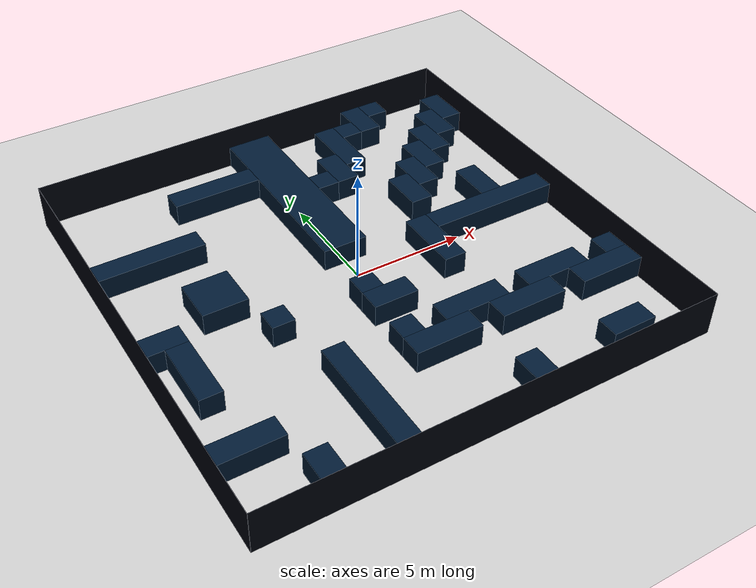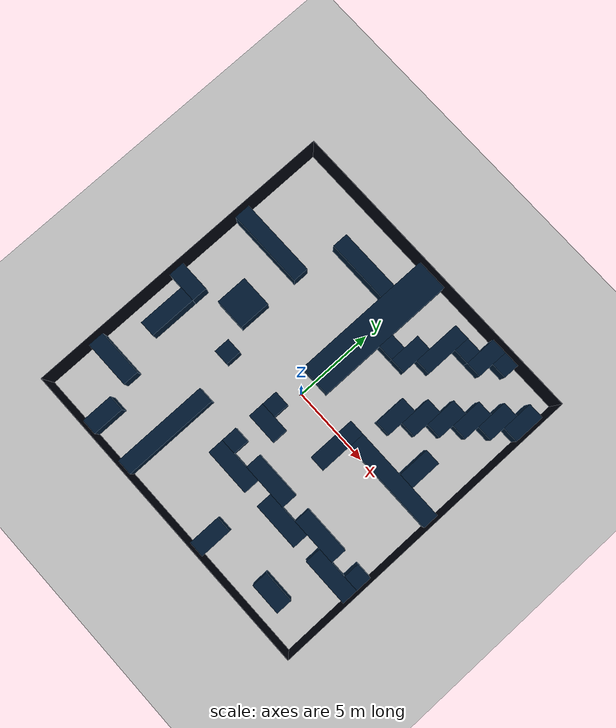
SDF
<?xml version="1.0"?>
<sdf version='1.8'>
    <world name='maze'>
        <physics name='1ms' type='ignored'>
            <max_step_size>0.003</max_step_size>
            <real_time_factor>1</real_time_factor>
            <real_time_update_rate>1000</real_time_update_rate>
        </physics>
        <plugin filename="gz-sim-physics-system" name="gz::sim::systems::Physics" />
        <plugin filename="gz-sim-user-commands-system" name="gz::sim::systems::UserCommands" />
        <plugin filename="gz-sim-scene-broadcaster-system" name="gz::sim::systems::SceneBroadcaster" />
        <plugin filename="gz-sim-sensors-system" name="gz::sim::systems::Sensors">
            <render_engine>ogre2</render_engine>
        </plugin>
        <plugin filename="gz-sim-imu-system" name="gz::sim::systems::Imu" />

        <include>
            <uri>https://fuel.gazebosim.org/1.0/OpenRobotics/models/Ground Plane</uri>
        </include>

        <light type="directional" name="sun">
            <cast_shadows>false</cast_shadows>
            <pose>0 0 10 0 0 0</pose>
            <diffuse>0.8 0.8 0.8 1</diffuse>
            <specular>0.2 0.2 0.2 1</specular>
            <attenuation>
                <range>1000</range>
                <constant>0.9</constant>
                <linear>0.01</linear>
                <quadratic>0.001</quadratic>
            </attenuation>
            <direction>-0.5 0.1 -0.9</direction>
        </light>

        <model name="goal_box">
            <pose>0 0 0 0 0 0</pose>
            <static>true</static>

            <link name="link">
                <inertial>
                    <mass>1</mass>
                </inertial>
                <visual name="visual">
                    <geometry>
                        <box>
                            <size>0.2 0.2 0.2</size>
                        </box>
                    </geometry>
                    <material>
                        <ambient>0.1 0.1 0.1 1</ambient>
                        <diffuse>0.87 0.11 0.11 1</diffuse>
                        <specular>0 0.01 0.05 1</specular>
                    </material>
                </visual>
            </link>

            <plugin name="trajectory_plugin" filename="libtrajectory_plugin.so">
                <script>
                    <loop>true</loop>
                    <auto_start>true</auto_start>

                    <trajectory id="0" type="square">

                        <waypoint>
                            <time>0.0</time>
                            <pose>1.5 -0.5 0.5 0 0 0</pose>
                        </waypoint>

                        <waypoint>
                            <time>10.0</time>
                            <pose>1.5 -0.5 0.5 0 0 0</pose>
                        </waypoint>

                        <waypoint>
                            <time>27.0</time>
                            <pose>2.2 -3.4 0.5 0 0 0</pose>
                        </waypoint>

                        <waypoint>
                            <time>41.0</time>
                            <pose>-0.5 -3.4 0.5 0 0 0</pose>
                        </waypoint>

                        <waypoint>
                            <time>55.0</time>
                            <pose>-2.45 -2.0 0.5 0 0 0</pose>
                        </waypoint>

                        <waypoint>
                            <time>69.0</time>
                            <pose>-3.45 0.8 0.5 0 0 0</pose>
                        </waypoint>

                        <waypoint>
                            <time>89.0</time>
                            <pose>-3.1 4.5 0.5 0 0 0</pose>
                        </waypoint>

                        <waypoint>
                            <time>120.0</time>
                            <pose>-7.0 7.5 0.5 0 0 0</pose>
                        </waypoint>

                    </trajectory>
                </script>
            </plugin>
        </model>

        <model name='border'>
            <pose>0 0 1 0 0 0</pose>
            <static>true</static>
            <link name='wall1'>
                <pose>-10.005 0 0 0 0 0</pose>
                <static>true</static>
                <collision name='wall1_collision'>
                    <geometry>
                        <box>
                            <size>0.01 20 2</size>
                        </box>
                    </geometry>
                </collision>
                <visual name='wall1_visual'>
                    <geometry>
                        <box>
                            <size>0.01 20 2</size>
                        </box>
                    </geometry>
                    <material>
                        <ambient>0.1 0.1 0.1 1</ambient>
                        <diffuse>0 0.01 0.05 1</diffuse>
                        <specular>0 0.01 0.05 1</specular>
                    </material>
                </visual>
            </link>
            <link name='wall2'>
                <pose>10.005 0 0 0 0 0</pose>
                <static>true</static>
                <collision name='wall2_collision'>
                    <geometry>
                        <box>
                            <size>0.01 20 2</size>
                        </box>
                    </geometry>
                </collision>
                <visual name='wall2_visual'>
                    <geometry>
                        <box>
                            <size>0.01 20 2</size>
                        </box>
                    </geometry>
                    <material>
                        <ambient>0.1 0.1 0.1 1</ambient>
                        <diffuse>0 0.01 0.05 1</diffuse>
                        <specular>0 0.01 0.05 1</specular>
                    </material>
                </visual>
            </link>
            <link name='wall3'>
                <pose>0 10.005 0 0 0 0</pose>
                <static>true</static>
                <collision name='wall3_collision'>
                    <geometry>
                        <box>
                            <size>20 0.01 2</size>
                        </box>
                    </geometry>
                </collision>
                <visual name='wall3_visual'>
                    <geometry>
                        <box>
                            <size>20 0.01 2</size>
                        </box>
                    </geometry>
                    <material>
                        <ambient>0.1 0.1 0.1 1</ambient>
                        <diffuse>0 0.01 0.05 1</diffuse>
                        <specular>0 0.01 0.05 1</specular>
                    </material>
                </visual>
            </link>
            <link name='wall4'>
                <pose>0 -10.005 0 0 0 0</pose>
                <static>true</static>
                <collision name='wall4_collision'>
                    <geometry>
                        <box>
                            <size>20 0.01 2</size>
                        </box>
                    </geometry>
                    <material>
                        <ambient>0.1 0.1 0.1 1</ambient>
                        <diffuse>0 0.01 0.05 1</diffuse>
                        <specular>0 0.01 0.05 1</specular>
                    </material>
                </collision>
                <visual name='wall4_visual'>
                    <geometry>
                        <box>
                            <size>20 0.01 2</size>
                        </box>
                    </geometry>
                    <material>
                        <ambient>0.1 0.1 0.1 1</ambient>
                        <diffuse>0 0.01 0.05 1</diffuse>
                        <specular>0 0.01 0.05 1</specular>
                    </material>
                </visual>
            </link>
        </model>

        <model name='obstacles'>
            <pose>0 0 0.5 0 0 0</pose>
            <static>true</static>
            <link name='wall1'>
                <pose>-6.5 -9 0 0 0 0</pose>
                <static>true</static>
                <collision name='wall1_collision'>
                    <geometry>
                        <box>
                            <size>1 2 1</size>
                        </box>
                    </geometry>
                </collision>
                <visual name='wall1_visual'>
                    <geometry>
                        <box>
                            <size>1 2 1</size>
                        </box>
                    </geometry>
                    <material>
                        <ambient>0.1 0.1 0.1 1</ambient>
                        <diffuse>0 0.1 0.2 1</diffuse>
                        <specular>0 0.01 0.05 1</specular>
                    </material>
                </visual>
            </link>

            <link name='wall2'>
                <pose>-8.5 -6.5 0 0 0 0</pose>
                <static>true</static>
                <collision name='wall2_collision'>
                    <geometry>
                        <box>
                            <size>3 1 1</size>
                        </box>
                    </geometry>
                </collision>
                <visual name='wall2_visual'>
                    <geometry>
                        <box>
                            <size>3 1 1</size>
                        </box>
                    </geometry>
                    <material>
                        <ambient>0.1 0.1 0.1 1</ambient>
                        <diffuse>0 0.1 0.2 1</diffuse>
                        <specular>0 0.01 0.05 1</specular>
                    </material>
                </visual>
            </link>

            <link name='wall3'>
                <pose>-3.5 -7 0 0 0 0</pose>
                <static>true</static>
                <collision name='wall3_collision'>
                    <geometry>
                        <box>
                            <size>1 6 1</size>
                        </box>
                    </geometry>
                </collision>
                <visual name='wall3_visual'>
                    <geometry>
                        <box>
                            <size>1 6 1</size>
                        </box>
                    </geometry>
                    <material>
                        <ambient>0.1 0.1 0.1 1</ambient>
                        <diffuse>0 0.1 0.2 1</diffuse>
                        <specular>0 0.01 0.05 1</specular>
                    </material>
                </visual>
            </link>

            <link name='wall4'>
                <pose>2.5 -9 0 0 0 0</pose>
                <static>true</static>
                <collision name='wall4_collision'>
                    <geometry>
                        <box>
                            <size>1 2 1</size>
                        </box>
                    </geometry>
                </collision>
                <visual name='wall4_visual'>
                    <geometry>
                        <box>
                            <size>1 2 1</size>
                        </box>
                    </geometry>
                    <material>
                        <ambient>0.1 0.1 0.1 1</ambient>
                        <diffuse>0 0.1 0.2 1</diffuse>
                        <specular>0 0.01 0.05 1</specular>
                    </material>
                </visual>
            </link>

            <link name='wall5'>
                <pose>7 -8.5 0 0 0 0</pose>
                <static>true</static>
                <collision name='wall5_collision'>
                    <geometry>
                        <box>
                            <size>2 1 1</size>
                        </box>
                    </geometry>
                </collision>
                <visual name='wall5_visual'>
                    <geometry>
                        <box>
                            <size>2 1 1</size>
                        </box>
                    </geometry>
                    <material>
                        <ambient>0.1 0.1 0.1 1</ambient>
                        <diffuse>0 0.1 0.2 1</diffuse>
                        <specular>0 0.01 0.05 1</specular>
                    </material>
                </visual>
            </link>

            <link name='wall6'>
                <pose>-9 -0.5 0 0 0 0</pose>
                <static>true</static>
                <collision name='wall6_collision'>
                    <geometry>
                        <box>
                            <size>2 1 1</size>
                        </box>
                    </geometry>
                </collision>
                <visual name='wall6_visual'>
                    <geometry>
                        <box>
                            <size>2 1 1</size>
                        </box>
                    </geometry>
                    <material>
                        <ambient>0.1 0.1 0.1 1</ambient>
                        <diffuse>0 0.1 0.2 1</diffuse>
                        <specular>0 0.01 0.05 1</specular>
                    </material>
                </visual>
            </link>

            <link name='wall7'>
                <pose>-8.5 -2.5 0 0 0 0</pose>
                <static>true</static>
                <collision name='wall7_collision'>
                    <geometry>
                        <box>
                            <size>1 3 1</size>
                        </box>
                    </geometry>
                </collision>
                <visual name='wall7_visual'>
                    <geometry>
                        <box>
                            <size>1 3 1</size>
                        </box>
                    </geometry>
                    <material>
                        <ambient>0.1 0.1 0.1 1</ambient>
                        <diffuse>0 0.1 0.2 1</diffuse>
                        <specular>0 0.01 0.05 1</specular>
                    </material>
                </visual>
            </link>

            <link name='wall8'>
                <pose>-4.5 -1.5 0 0 0 0</pose>
                <static>true</static>
                <collision name='wall8_collision'>
                    <geometry>
                        <box>
                            <size>1 1 1</size>
                        </box>
                    </geometry>
                </collision>
                <visual name='wall8_visual'>
                    <geometry>
                        <box>
                            <size>1 1 1</size>
                        </box>
                    </geometry>
                    <material>
                        <ambient>0.1 0.1 0.1 1</ambient>
                        <diffuse>0 0.1 0.2 1</diffuse>
                        <specular>0 0.01 0.05 1</specular>
                    </material>
                </visual>
            </link>

            <link name='wall9'>
                <pose>-6 1 0 0 0 0</pose>
                <static>true</static>
                <collision name='wall9_collision'>
                    <geometry>
                        <box>
                            <size>2 2 1</size>
                        </box>
                    </geometry>
                </collision>
                <visual name='wall9_visual'>
                    <geometry>
                        <box>
                            <size>2 2 1</size>
                        </box>
                    </geometry>
                    <material>
                        <ambient>0.1 0.1 0.1 1</ambient>
                        <diffuse>0 0.1 0.2 1</diffuse>
                        <specular>0 0.01 0.05 1</specular>
                    </material>
                </visual>
            </link>

            <link name='wall10'>
                <pose>-7.5 4.5 0 0 0 0</pose>
                <static>true</static>
                <collision name='wall10_collision'>
                    <geometry>
                        <box>
                            <size>5 1 1</size>
                        </box>
                    </geometry>
                </collision>
                <visual name='wall10_visual'>
                    <geometry>
                        <box>
                            <size>5 1 1</size>
                        </box>
                    </geometry>
                    <material>
                        <ambient>0.1 0.1 0.1 1</ambient>
                        <diffuse>0 0.1 0.2 1</diffuse>
                        <specular>0 0.01 0.05 1</specular>
                    </material>
                </visual>
            </link>

            <link name='wall11'>
                <pose>-3 7.5 0 0 0 0</pose>
                <static>true</static>
                <collision name='wall11_collision'>
                    <geometry>
                        <box>
                            <size>4 1 1</size>
                        </box>
                    </geometry>
                </collision>
                <visual name='wall11_visual'>
                    <geometry>
                        <box>
                            <size>4 1 1</size>
                        </box>
                    </geometry>
                    <material>
                        <ambient>0.1 0.1 0.1 1</ambient>
                        <diffuse>0 0.1 0.2 1</diffuse>
                        <specular>0 0.01 0.05 1</specular>
                    </material>
                </visual>
            </link>
            <link name='wall12'>
                <pose>0 5.5 0 0 0 0</pose>
                <static>true</static>
                <collision name='wall12_collision'>
                    <geometry>
                        <box>
                            <size>2 9 1</size>
                        </box>
                    </geometry>
                </collision>
                <visual name='wall12_visual'>
                    <geometry>
                        <box>
                            <size>2 9 1</size>
                        </box>
                    </geometry>
                    <material>
                        <ambient>0.1 0.1 0.1 1</ambient>
                        <diffuse>0 0.1 0.2 1</diffuse>
                        <specular>0 0.01 0.05 1</specular>
                    </material>
                </visual>
            </link>

            <link name='wall13'>
                <pose>0 -2.5 0 0 0 0</pose>
                <static>true</static>
                <collision name='wall13_collision'>
                    <geometry>
                        <box>
                            <size>2 1 1</size>
                        </box>
                    </geometry>
                </collision>
                <visual name='wall13_visual'>
                    <geometry>
                        <box>
                            <size>2 1 1</size>
                        </box>
                    </geometry>
                    <material>
                        <ambient>0.1 0.1 0.1 1</ambient>
                        <diffuse>0 0.1 0.2 1</diffuse>
                        <specular>0 0.01 0.05 1</specular>
                    </material>
                </visual>
            </link>

            <link name='wall14'>
                <pose>-0.5 -1.5 0 0 0 0</pose>
                <static>true</static>
                <collision name='wall14_collision'>
                    <geometry>
                        <box>
                            <size>1 1 1</size>
                        </box>
                    </geometry>
                </collision>
                <visual name='wall14_visual'>
                    <geometry>
                        <box>
                            <size>1 1 1</size>
                        </box>
                    </geometry>
                    <material>
                        <ambient>0.1 0.1 0.1 1</ambient>
                        <diffuse>0 0.1 0.2 1</diffuse>
                        <specular>0 0.01 0.05 1</specular>
                    </material>
                </visual>
            </link>

            <link name='wall15'>
                <pose>-0.5 -4.5 0 0 0 0</pose>
                <static>true</static>
                <collision name='wall15_collision'>
                    <geometry>
                        <box>
                            <size>1 1 1</size>
                        </box>
                    </geometry>
                </collision>
                <visual name='wall15_visual'>
                    <geometry>
                        <box>
                            <size>1 1 1</size>
                        </box>
                    </geometry>
                    <material>
                        <ambient>0.1 0.1 0.1 1</ambient>
                        <diffuse>0 0.1 0.2 1</diffuse>
                        <specular>0 0.01 0.05 1</specular>
                    </material>
                </visual>
            </link>

            <link name='wall16'>
                <pose>0.5 -5.5 0 0 0 0</pose>
                <static>true</static>
                <collision name='wall16_collision'>
                    <geometry>
                        <box>
                            <size>3 1 1</size>
                        </box>
                    </geometry>
                </collision>
                <visual name='wall16_visual'>
                    <geometry>
                        <box>
                            <size>3 1 1</size>
                        </box>
                    </geometry>
                    <material>
                        <ambient>0.1 0.1 0.1 1</ambient>
                        <diffuse>0 0.1 0.2 1</diffuse>
                        <specular>0 0.01 0.05 1</specular>
                    </material>
                </visual>
            </link>

            <link name='wall17'>
                <pose>2.5 -4.5 0 0 0 0</pose>
                <static>true</static>
                <collision name='wall17_collision'>
                    <geometry>
                        <box>
                            <size>3 1 1</size>
                        </box>
                    </geometry>
                </collision>
                <visual name='wall17_visual'>
                    <geometry>
                        <box>
                            <size>3 1 1</size>
                        </box>
                    </geometry>
                    <material>
                        <ambient>0.1 0.1 0.1 1</ambient>
                        <diffuse>0 0.1 0.2 1</diffuse>
                        <specular>0 0.01 0.05 1</specular>
                    </material>
                </visual>
            </link>

            <link name='wall18'>
                <pose>4.5 -5.5 0 0 0 0</pose>
                <static>true</static>
                <collision name='wall18_collision'>
                    <geometry>
                        <box>
                            <size>3 1 1</size>
                        </box>
                    </geometry>
                </collision>
                <visual name='wall18_visual'>
                    <geometry>
                        <box>
                            <size>3 1 1</size>
                        </box>
                    </geometry>
                    <material>
                        <ambient>0.1 0.1 0.1 1</ambient>
                        <diffuse>0 0.1 0.2 1</diffuse>
                        <specular>0 0.01 0.05 1</specular>
                    </material>
                </visual>
            </link>

            <link name='wall19'>
                <pose>6.5 -4.5 0 0 0 0</pose>
                <static>true</static>
                <collision name='wall19_collision'>
                    <geometry>
                        <box>
                            <size>3 1 1</size>
                        </box>
                    </geometry>
                </collision>
                <visual name='wall19_visual'>
                    <geometry>
                        <box>
                            <size>3 1 1</size>
                        </box>
                    </geometry>
                    <material>
                        <ambient>0.1 0.1 0.1 1</ambient>
                        <diffuse>0 0.1 0.2 1</diffuse>
                        <specular>0 0.01 0.05 1</specular>
                    </material>
                </visual>
            </link>

            <link name='wall20'>
                <pose>8.5 -5.5 0 0 0 0</pose>
                <static>true</static>
                <collision name='wall20_collision'>
                    <geometry>
                        <box>
                            <size>3 1 1</size>
                        </box>
                    </geometry>
                </collision>
                <visual name='wall20_visual'>
                    <geometry>
                        <box>
                            <size>3 1 1</size>
                        </box>
                    </geometry>
                    <material>
                        <ambient>0.1 0.1 0.1 1</ambient>
                        <diffuse>0 0.1 0.2 1</diffuse>
                        <specular>0 0.01 0.05 1</specular>
                    </material>
                </visual>
            </link>

            <link name='wall21'>
                <pose>9.5 -4.5 0 0 0 0</pose>
                <static>true</static>
                <collision name='wall21_collision'>
                    <geometry>
                        <box>
                            <size>1 1 1</size>
                        </box>
                    </geometry>
                </collision>
                <visual name='wall21_visual'>
                    <geometry>
                        <box>
                            <size>1 1 1</size>
                        </box>
                    </geometry>
                    <material>
                        <ambient>0.1 0.1 0.1 1</ambient>
                        <diffuse>0 0.1 0.2 1</diffuse>
                        <specular>0 0.01 0.05 1</specular>
                    </material>
                </visual>
            </link>

            <link name='wall22'>
                <pose>3.5 -0.5 0 0 0 0</pose>
                <static>true</static>
                <collision name='wall22_collision'>
                    <geometry>
                        <box>
                            <size>1 3 1</size>
                        </box>
                    </geometry>
                </collision>
                <visual name='wall22_visual'>
                    <geometry>
                        <box>
                            <size>1 3 1</size>
                        </box>
                    </geometry>
                    <material>
                        <ambient>0.1 0.1 0.1 1</ambient>
                        <diffuse>0 0.1 0.2 1</diffuse>
                        <specular>0 0.01 0.05 1</specular>
                    </material>
                </visual>
            </link>

            <link name='wall23'>
                <pose>7 0.5 0 0 0 0</pose>
                <static>true</static>
                <collision name='wall23_collision'>
                    <geometry>
                        <box>
                            <size>6 1 1</size>
                        </box>
                    </geometry>
                </collision>
                <visual name='wall23_visual'>
                    <geometry>
                        <box>
                            <size>6 1 1</size>
                        </box>
                    </geometry>
                    <material>
                        <ambient>0.1 0.1 0.1 1</ambient>
                        <diffuse>0 0.1 0.2 1</diffuse>
                        <specular>0 0.01 0.05 1</specular>
                    </material>
                </visual>
            </link>

            <link name='wall24'>
                <pose>7.5 2 0 0 0 0</pose>
                <static>true</static>
                <collision name='wall24_collision'>
                    <geometry>
                        <box>
                            <size>1 2 1</size>
                        </box>
                    </geometry>
                </collision>
                <visual name='wall24_visual'>
                    <geometry>
                        <box>
                            <size>1 2 1</size>
                        </box>
                    </geometry>
                    <material>
                        <ambient>0.1 0.1 0.1 1</ambient>
                        <diffuse>0 0.1 0.2 1</diffuse>
                        <specular>0 0.01 0.05 1</specular>
                    </material>
                </visual>
            </link>

            <link name='wall25'>
                <pose>1.5 5.5 0 0 0 0</pose>
                <static>true</static>
                <collision name='wall25_collision'>
                    <geometry>
                        <box>
                            <size>1 1 1</size>
                        </box>
                    </geometry>
                </collision>
                <visual name='wall25_visual'>
                    <geometry>
                        <box>
                            <size>1 1 1</size>
                        </box>
                    </geometry>
                    <material>
                        <ambient>0.1 0.1 0.1 1</ambient>
                        <diffuse>0 0.1 0.2 1</diffuse>
                        <specular>0 0.01 0.05 1</specular>
                    </material>
                </visual>
            </link>

            <link name='wall26'>
                <pose>2.5 6 0 0 0 0</pose>
                <static>true</static>
                <collision name='wall26_collision'>
                    <geometry>
                        <box>
                            <size>1 2 1</size>
                        </box>
                    </geometry>
                </collision>
                <visual name='wall26_visual'>
                    <geometry>
                        <box>
                            <size>1 2 1</size>
                        </box>
                    </geometry>
                    <material>
                        <ambient>0.1 0.1 0.1 1</ambient>
                        <diffuse>0 0.1 0.2 1</diffuse>
                        <specular>0 0.01 0.05 1</specular>
                    </material>
                </visual>
            </link>

            <link name='wall27'>
                <pose>3.5 7.5 0 0 0 0</pose>
                <static>true</static>
                <collision name='wall27_collision'>
                    <geometry>
                        <box>
                            <size>1 3 1</size>
                        </box>
                    </geometry>
                </collision>
                <visual name='wall27_visual'>
                    <geometry>
                        <box>
                            <size>1 3 1</size>
                        </box>
                    </geometry>
                    <material>
                        <ambient>0.1 0.1 0.1 1</ambient>
                        <diffuse>0 0.1 0.2 1</diffuse>
                        <specular>0 0.01 0.05 1</specular>
                    </material>
                </visual>
            </link>

            <link name='wall28'>
                <pose>4.5 8.5 0 0 0 0</pose>
                <static>true</static>
                <collision name='wall28_collision'>
                    <geometry>
                        <box>
                            <size>1 1 1</size>
                        </box>
                    </geometry>
                </collision>
                <visual name='wall28_visual'>
                    <geometry>
                        <box>
                            <size>1 1 1</size>
                        </box>
                    </geometry>
                    <material>
                        <ambient>0.1 0.1 0.1 1</ambient>
                        <diffuse>0 0.1 0.2 1</diffuse>
                        <specular>0 0.01 0.05 1</specular>
                    </material>
                </visual>
            </link>

            <link name='wall29'>
                <pose>5.5 9 0 0 0 0</pose>
                <static>true</static>
                <collision name='wall29_collision'>
                    <geometry>
                        <box>
                            <size>1 2 1</size>
                        </box>
                    </geometry>
                </collision>
                <visual name='wall29_visual'>
                    <geometry>
                        <box>
                            <size>1 2 1</size>
                        </box>
                    </geometry>
                    <material>
                        <ambient>0.1 0.1 0.1 1</ambient>
                        <diffuse>0 0.1 0.2 1</diffuse>
                        <specular>0 0.01 0.05 1</specular>
                    </material>
                </visual>
            </link>

            <link name='wall30'>
                <pose>6.5 9.5 0 0 0 0</pose>
                <static>true</static>
                <collision name='wall30_collision'>
                    <geometry>
                        <box>
                            <size>1 1 1</size>
                        </box>
                    </geometry>
                </collision>
                <visual name='wall30_visual'>
                    <geometry>
                        <box>
                            <size>1 1 1</size>
                        </box>
                    </geometry>
                    <material>
                        <ambient>0.1 0.1 0.1 1</ambient>
                        <diffuse>0 0.1 0.2 1</diffuse>
                        <specular>0 0.01 0.05 1</specular>
                    </material>
                </visual>
            </link>

            <link name='wall31'>
                <pose>4.5 3 0 0 0 0</pose>
                <static>true</static>
                <collision name='wall31_collision'>
                    <geometry>
                        <box>
                            <size>1 2 1</size>
                        </box>
                    </geometry>
                </collision>
                <visual name='wall31_visual'>
                    <geometry>
                        <box>
                            <size>1 2 1</size>
                        </box>
                    </geometry>
                    <material>
                        <ambient>0.1 0.1 0.1 1</ambient>
                        <diffuse>0 0.1 0.2 1</diffuse>
                        <specular>0 0.01 0.05 1</specular>
                    </material>
                </visual>
            </link>

            <link name='wall32'>
                <pose>5.5 4 0 0 0 0</pose>
                <static>true</static>
                <collision name='wall32_collision'>
                    <geometry>
                        <box>
                            <size>1 2 1</size>
                        </box>
                    </geometry>
                </collision>
                <visual name='wall32_visual'>
                    <geometry>
                        <box>
                            <size>1 2 1</size>
                        </box>
                    </geometry>
                    <material>
                        <ambient>0.1 0.1 0.1 1</ambient>
                        <diffuse>0 0.1 0.2 1</diffuse>
                        <specular>0 0.01 0.05 1</specular>
                    </material>
                </visual>
            </link>

            <link name='wall33'>
                <pose>6.5 5 0 0 0 0</pose>
                <static>true</static>
                <collision name='wall33_collision'>
                    <geometry>
                        <box>
                            <size>1 2 1</size>
                        </box>
                    </geometry>
                </collision>
                <visual name='wall33_visual'>
                    <geometry>
                        <box>
                            <size>1 2 1</size>
                        </box>
                    </geometry>
                    <material>
                        <ambient>0.1 0.1 0.1 1</ambient>
                        <diffuse>0 0.1 0.2 1</diffuse>
                        <specular>0 0.01 0.05 1</specular>
                    </material>
                </visual>
            </link>

            <link name='wall34'>
                <pose>7.5 6 0 0 0 0</pose>
                <static>true</static>
                <collision name='wall34_collision'>
                    <geometry>
                        <box>
                            <size>1 2 1</size>
                        </box>
                    </geometry>
                </collision>
                <visual name='wall34_visual'>
                    <geometry>
                        <box>
                            <size>1 2 1</size>
                        </box>
                    </geometry>
                    <material>
                        <ambient>0.1 0.1 0.1 1</ambient>
                        <diffuse>0 0.1 0.2 1</diffuse>
                        <specular>0 0.01 0.05 1</specular>
                    </material>
                </visual>
            </link>

            <link name='wall35'>
                <pose>8.5 7 0 0 0 0</pose>
                <static>true</static>
                <collision name='wall35_collision'>
                    <geometry>
                        <box>
                            <size>1 2 1</size>
                        </box>
                    </geometry>
                </collision>
                <visual name='wall35_visual'>
                    <geometry>
                        <box>
                            <size>1 2 1</size>
                        </box>
                    </geometry>
                    <material>
                        <ambient>0.1 0.1 0.1 1</ambient>
                        <diffuse>0 0.1 0.2 1</diffuse>
                        <specular>0 0.01 0.05 1</specular>
                    </material>
                </visual>
            </link>

            <link name='wall36'>
                <pose>9.5 8 0 0 0 0</pose>
                <static>true</static>
                <collision name='wall36_collision'>
                    <geometry>
                        <box>
                            <size>1 2 1</size>
                        </box>
                    </geometry>
                </collision>
                <visual name='wall36_visual'>
                    <geometry>
                        <box>
                            <size>1 2 1</size>
                        </box>
                    </geometry>
                    <material>
                        <ambient>0.1 0.1 0.1 1</ambient>
                        <diffuse>0 0.1 0.2 1</diffuse>
                        <specular>0 0.01 0.05 1</specular>
                    </material>
                </visual>
            </link>
        </model>
    </world>
</sdf>
